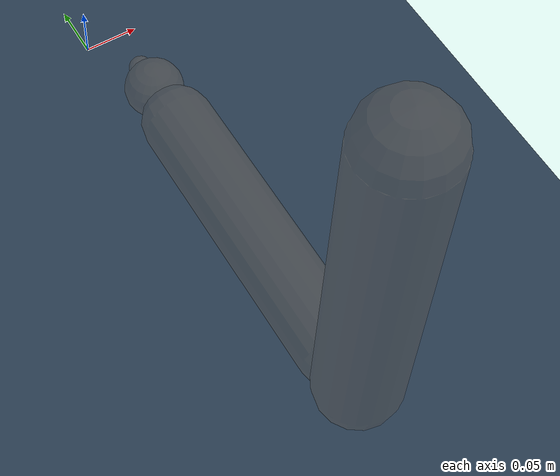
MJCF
<?xml version="1.0" encoding="utf-8"?>
<mujoco>
	<compiler angle="radian"></compiler>
	<size njmax="400" nconmax="100" nuser_jnt="1" nuser_site="1" nuser_tendon="1" nuser_sensor="1" nuser_actuator="16" nstack="600000"></size>
	<option timestep="0.01" iterations="20" apirate="200" noslip_iterations="20"  impratio="1"></option>
	<asset>
		<material name="self" rgba=".7 .5 .3 0.1"/>
		<texture builtin="gradient" height="100" rgb1="1 1 1" rgb2="0 0 0" type="skybox" width="100"/>
		<texture name="texplane" type="2d" builtin="checker" rgb1=".2 .3 .4" rgb2=".1 0.15 0.2" width="512" height="512"></texture>
		<material name="MatGnd" reflectance="0.5" texture="texplane" texrepeat="2 2" texuniform="true"></material>
		<material name="MatPlane" reflectance="0.05" texture="texplane" texrepeat="1 1" texuniform="true"></material>
	</asset>
	<default>
		<default class="Adroit">
			<geom friction="1 0.005 0.001" condim="3" margin="0.000" contype="1" conaffinity="1"></geom>
			<joint limited="true" damping="0.05" armature=".001" margin="0.01" frictionloss="0.001"></joint>
			<tendon limited="true"></tendon>
			<site size="0.005" rgba=".4 .9 .4 0"></site>
			<default class="D_Touch">
				<site type="box" size="0.009 0.004 0.013" pos="0 -.004 .018" rgba=".8 .8 .8 .15" group="4"></site>
			</default>
			<default class="DC_Hand">
				<geom contype="1" conaffinity="0" material="self" group="2"></geom>
			</default>
		</default>
	</default>

	<actuator>
        <motor name="A_UARM1"  joint="UARM1" ctrlrange="-100   100" gear = "1"/>
        <motor name="A_UARM2"  joint="UARM2" ctrlrange="-100   100" gear = "1"/>
        <motor name="A_UARM3"  joint="UARM3" ctrlrange="-100   100" gear = "1"/>
        <motor name="A_FARM1"  joint="FARM1" ctrlrange="-100   100" gear = "1"/>
        <motor name="A_WRJ0" user="2036" joint="WRJ0" ctrlrange="-50   50" gear="1"/>
        <motor name="A_WRJ1" user="2038" joint="WRJ1" ctrlrange="-50   50" gear="1"/>
        <motor name="A_WRJ2" joint="WRJ2" ctrlrange="-50   50" gear="1"/>
    </actuator>

	<worldbody>
		<light diffuse="1 1 1" dir="-0 0 -1.3" directional="true" exponent="1" pos="0 0 1.3" specular=".1 .1 .1" castshadow = "false"/>
		<geom name="ground" pos="0 0 0" size="1 1 5" material="MatGnd" type="plane" contype="1" conaffinity="1"></geom>
			<body name="hand mount" pos="0 -.45 0.2" euler="-1.57079632 0 0">
			<inertial mass="0.100" pos="0 0 0" diaginertia="0.001 0.001 0.001"></inertial>
			<body name = "upperarm" childclass = "Adroit" pos = "0 -0.2 0">
				<geom  name="C_upperasrm1" type="sphere" size = '0.001' pos="0 0 0 " class = 'DC_Hand'/>
				<joint name="UARM1" type="hinge" pos="0 0 0" axis="1 0 0" range="-1.57 1.57" damping="0" armature="1"/>
				<body name = 'upperarm2' pos = '0 0 0'>
					<joint name="UARM2" type="hinge" pos="0 0 0" axis="0 0 1" range="-1.57 0" damping="0" armature="1"/>
					<geom  name="C_upperarm2" type="sphere" size = '0.001' pos="0 0 0 " class = 'DC_Hand'/>
					<body name = 'upperarm3' pos = '0 0 0'>
						<joint name="UARM3" type="hinge" pos="0 0 0" axis="0 -1 0" range="-1.57 1.57" damping="0" armature="1"/>
						<geom class="DC_Hand" name="C_upperarm" type="capsule" size = '0.035 0.15 ' pos="0 0.15 0" euler="-1.57 0 0" />
							<body name="forearm" childclass="Adroit" pos="0 0.3 0" euler="0 0 0">
								<inertial pos="0.001 -0.002 0.15" quat="0.982 -0.016 0.000 -0.188" mass="4" diaginertia="0.01 0.01 0.0075" />
								<joint name="FARM1" type="hinge" pos="0 0 0" axis="1 0 0" range="-1.57 1.57" damping="0" armature="1"/>
								<geom class="DC_Hand" name="C_forearm" type="capsule" size = '0.03 0.12 ' pos="0 -.0 0.15" euler="0 0 -1.57" />
								<!-- ======= Wrist ======= -->
								<body name="wrist" pos="0 0 0.3">
									<inertial pos="0.003 0.000 0.016" quat="0.504 0.496 0.495 0.504" mass="0.3" diaginertia="0.001 0.001 0.001" />
									<joint name="WRJ0" type="hinge" pos="0 0 0" axis="1 0 0" range="-1 1" damping="0" armature=".005" user="1122"/>
									<body name = 'wrist1' pos= '0 0 0'>
										<joint name="WRJ1" type="hinge" pos="0 0 0" axis="0 1 0" range="-1.2 1.2" damping="0" armature=".005" user="1123"/>
										<geom  name="C_wrist1" type="sphere" size = '0.001' pos="0 0 0 " class = 'DC_Hand'/>
											<body name = 'wrist2' pos = '0 0 0'>
												<joint name="WRJ2" type="hinge" pos="0 0 0" axis="0 0 1" range="-3.14 0" damping="0" armature=".005"/>
												<geom class="DC_Hand" name="C_wrist" type="sphere" pos="0 0 0.01"  quat=".707 .707 0 0" size=".025" />
												<body name="palm" pos="0 0 0.034">
													<geom class="DC_Hand" name="C_palm" type="sphere" pos="0 0 0.0"  quat=".707 .707 0 0" size=".01" />
												</body>
											</body>
									</body> <!--Palm Ends-->
								</body> <!--Wrist Ends-->
							</body> <!--Forearm/ Hand Actuation Ends-->
					</body>
				</body>
			</body>
		</body>
	</worldbody>
</mujoco>
